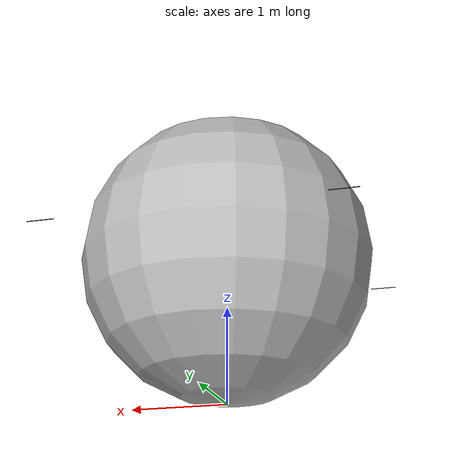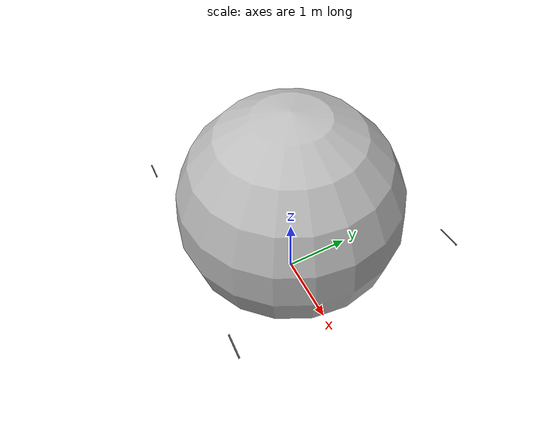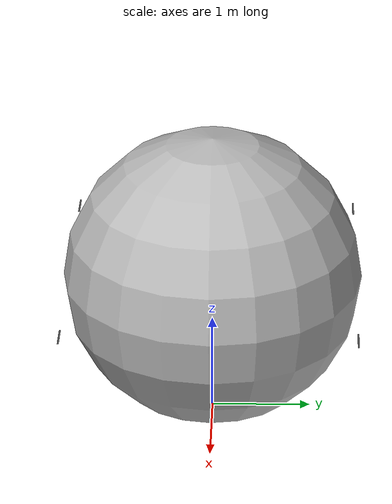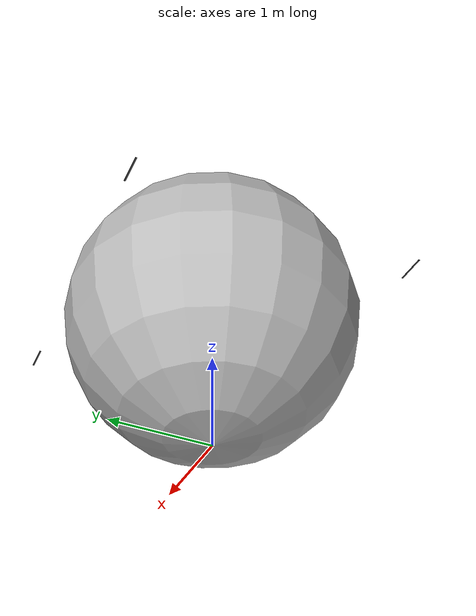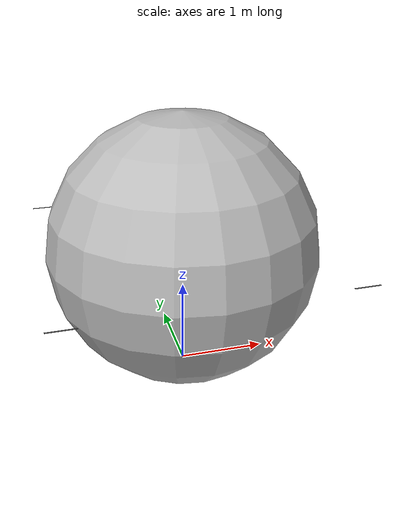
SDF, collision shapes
<?xml version="1.0" encoding="UTF-8"?>
<sdf version='1.9'>
  <model name='hb_2'>
    <pose>0 0 1.5 0 0 0</pose>
    <self_collide>false</self_collide>
    <static>false</static>
    <link name="base_link">
      <inertial>
        <mass>2.0</mass>
        <inertia>
          <ixx>0.02166666666666667</ixx>
          <ixy>0</ixy>
          <ixz>0</ixz>
          <iyy>0.02166666666666667</iyy>
          <iyz>0</iyz>
          <izz>0.04000000000000001</izz>
        </inertia>
      </inertial>
      <gravity>true</gravity>
      <velocity_decay/>
      <visual name="base_link_visual">
        <pose>0 0 0 0 0 0</pose>
        <geometry>
          <mesh>
            <scale>1 1 1</scale>
            <uri>model://hb_2/meshes/body.dae</uri>
          </mesh>
        </geometry>
      </visual>
      <visual name="motor_arm_0">
        <pose> 1.061 1.061 0 0 0 0.785</pose>
        <geometry>
          <mesh>
            <scale>1 1 1</scale>
            <uri>model://hb_2/meshes/motor_arm.dae</uri>
          </mesh>
        </geometry>
      </visual>
      <visual name="motor_arm_1">
        <pose> -1.061 1.061 0 0 0 2.356</pose>
        <geometry>
          <mesh>
            <scale>1 1 1</scale>
            <uri>model://hb_2/meshes/motor_arm.dae</uri>
          </mesh>
        </geometry>
      </visual>
      <visual name="motor_arm_2">
        <pose> 1.061 -1.061 0 0 0 -0.785</pose>
        <geometry>
          <mesh>
            <scale>1 1 1</scale>
            <uri>model://hb_2/meshes/motor_arm.dae</uri>
          </mesh>
        </geometry>
      </visual>
      <visual name="motor_arm_3">
        <pose> -1.061 -1.061 0 0 0 -2.356</pose>
        <geometry>
          <mesh>
            <scale>1 1 1</scale>
            <uri>model://hb_2/meshes/motor_arm.dae</uri>
          </mesh>
        </geometry>
      </visual>
      <visual name="5010_motor_base_0">
        <pose>1.439 1.439 .020 0 0 -.45</pose>
        <geometry>
          <mesh>
            <scale>1 1 1</scale>
            <uri>model://hb_2/meshes/5010Base.dae</uri>
          </mesh>
        </geometry>
      </visual>
      <visual name="5010_motor_base_1">
        <pose>-1.439 1.439 .020 0 0 -.45</pose>
        <geometry>
          <mesh>
            <scale>1 1 1</scale>
            <uri>model://hb_2/meshes/5010Base.dae</uri>
          </mesh>
        </geometry>
      </visual>
      <visual name="5010_motor_base_2">
        <pose>1.439 -1.439 .020 0 0 -.45</pose>
        <geometry>
          <mesh>
            <scale>1 1 1</scale>
            <uri>model://hb_2/meshes/5010Base.dae</uri>
          </mesh>
        </geometry>
      </visual>
      <visual name="5010_motor_base_3">
        <pose>-1.439 -1.439 .020 0 0 -.45</pose>
        <geometry>
          <mesh>
            <scale>1 1 1</scale>
            <uri>model://hb_2/meshes/5010Base.dae</uri>
          </mesh>
        </geometry>
      </visual>
      <collision name="base_link_collision_0">
        <pose>0 0 .007 0 0 0</pose>
        <geometry>
          <box>
            <size>0.35355339059327373 0.35355339059327373 0.05</size>
          </box>
        </geometry>
        <surface>
          <contact>
            <ode>
              <min_depth>0.001</min_depth>
              <max_vel>0</max_vel>
            </ode>
          </contact>
          <friction>
            <ode/>
          </friction>
        </surface>
      </collision>
      <collision name="base_link_collision_1">
        <pose>0 0 0 0 0 0</pose>
        <geometry>
          <sphere>
            <radius>1.5</radius>
          </sphere>
        </geometry>
        <surface>
          <contact>
            <ode>
              <min_depth>0.001</min_depth>
              <max_vel>0</max_vel>
            </ode>
          </contact>
          <friction>
            <ode/>
          </friction>
        </surface>
      </collision>
      <sensor name="air_pressure_sensor" type="air_pressure">
        <always_on>1</always_on>
        <update_rate>50</update_rate>
        <air_pressure>
          <!-- Noise modeled after BMP390 -->
          <pressure>
            <noise type="gaussian">
              <mean>0</mean>
              <stddev>3</stddev>
            </noise>
          </pressure>
        </air_pressure>
      </sensor>
      <sensor name="magnetometer_sensor" type="magnetometer">
        <always_on>1</always_on>
        <update_rate>100</update_rate>
        <magnetometer>
          <!-- TODO: update to fix units and coordinate system when we move past Harmonic -->
          <!-- See https://github.com/gazebosim/gz-sim/pull/2460 -->
          <!-- 3mgauss RMS: NOTE: noise is in tesla but sensor reports data in gauss -->
          <!-- Noise modeled after IIS2MDC -->
          <x>
            <noise type="gaussian">
              <stddev>0.0001</stddev>
            </noise>
          </x>
          <y>
            <noise type="gaussian">
              <stddev>0.0001</stddev>
            </noise>
          </y>
          <z>
            <noise type="gaussian">
              <stddev>0.0001</stddev>
            </noise>
          </z>
        </magnetometer>
      </sensor>
      <sensor name="imu_sensor" type="imu">
        <always_on>1</always_on>
        <update_rate>250</update_rate>
        <imu>
          <angular_velocity>
            <!-- Noise modeled after IIM42653 -->
            <!-- 0.05 deg/s converted to rad/s -->
            <x>
              <noise type="gaussian">
                <mean>0.0</mean>
                <stddev>0.0008726646</stddev>
              </noise>
            </x>
            <y>
              <noise type="gaussian">
                <mean>0.0</mean>
                <stddev>0.0008726646</stddev>
              </noise>
            </y>
            <z>
              <noise type="gaussian">
                <mean>0.0</mean>
                <stddev>0.0008726646</stddev>
              </noise>
            </z>
          </angular_velocity>
          <linear_acceleration>
            <!-- Noise modeled after IIM42653 -->
            <!-- X & Y axis: 0.65 mg-rms converted to m/ss -->
            <x>
              <noise type="gaussian">
                <mean>0.0</mean>
                <stddev>0.00637</stddev>
              </noise>
            </x>
            <y>
              <noise type="gaussian">
                <mean>0.0</mean>
                <stddev>0.00637</stddev>
              </noise>
            </y>
            <!-- Z axis: 0.70 mg-rms converted to m/ss-->
            <z>
              <noise type="gaussian">
                <mean>0.0</mean>
                <stddev>0.00686</stddev>
              </noise>
            </z>
          </linear_acceleration>
        </imu>
      </sensor>
      <sensor name="navsat_sensor" type="navsat">
        <always_on>1</always_on>
        <update_rate>30</update_rate>
      </sensor>
    </link>
    <link name="rotor_0">
      <gravity>true</gravity>
      <self_collide>false</self_collide>
      <velocity_decay/>
      <pose>1.439 -1.439 0.048 0 0 0</pose>
      <inertial>
        <mass>0.016076923076923075</mass>
        <inertia>
          <ixx>3.8464910483993325e-07</ixx>
          <iyy>2.6115851691700804e-05</iyy>
          <izz>2.649858234714004e-05</izz>
        </inertia>
      </inertial>
      <visual name="rotor_0_visual">
        <pose>-0.022 -0.14638461538461536 -0.016 0 0 0</pose>
        <geometry>
          <mesh>
            <scale>1 1 1</scale>
            <uri>model://hb_2/meshes/1345_prop_ccw.stl</uri>
          </mesh>
        </geometry>
        <material>
          <script>
            <name>Gazebo/DarkGrey</name>
            <uri>file://media/materials/scripts/gazebo.material</uri>
          </script>
        </material>
      </visual>
      <visual name="rotor_0_visual_motor_bell">
        <pose>0 0 -.032 0 0 0</pose>
        <geometry>
          <mesh>
            <scale>1 1 1</scale>
            <uri>model://hb_2/meshes/5010Bell.dae</uri>
          </mesh>
        </geometry>
      </visual>
      <collision name="rotor_0_collision">
        <pose>0 0 0 0 0 0 </pose>
        <geometry>
          <box>
            <size>0.2792307692307692 0.016923076923076923 0.0008461538461538462</size>
          </box>
        </geometry>
        <surface>
          <contact>
            <ode>
              <min_depth>0.001</min_depth>
              <max_vel>0</max_vel>
            </ode>
          </contact>
          <friction>
            <ode/>
          </friction>
        </surface>
      </collision>
    </link>
    <joint name="rotor_0_joint" type="revolute">
      <parent>base_link</parent>
      <child>rotor_0</child>
      <axis>
        <xyz>0 0 1</xyz>
        <limit>
          <lower>-1e+16</lower>
          <upper>1e+16</upper>
        </limit>
        <dynamics>
          <spring_reference>0</spring_reference>
          <spring_stiffness>0</spring_stiffness>
        </dynamics>
      </axis>
    </joint>
    <link name="rotor_1">
      <gravity>true</gravity>
      <self_collide>false</self_collide>
      <velocity_decay/>
      <pose>-1.439 1.439 0.048 0 0 0</pose>
      <inertial>
        <mass>0.016076923076923075</mass>
        <inertia>
          <ixx>3.8464910483993325e-07</ixx>
          <iyy>2.6115851691700804e-05</iyy>
          <izz>2.649858234714004e-05</izz>
        </inertia>
      </inertial>
      <visual name="rotor_1_visual">
        <pose>-0.022 -0.14638461538461536 -0.016 0 0 0</pose>
        <geometry>
          <mesh>
            <scale>1 1 1</scale>
            <uri>model://hb_2/meshes/1345_prop_ccw.stl</uri>
          </mesh>
        </geometry>
        <material>
          <script>
            <name>Gazebo/DarkGrey</name>
            <uri>file://media/materials/scripts/gazebo.material</uri>
          </script>
        </material>
      </visual>
      <visual name="rotor_1_visual_motor_top">
        <pose>0 0 -.032 0 0 0</pose>
        <geometry>
          <mesh>
            <scale>1 1 1</scale>
            <uri>model://hb_2/meshes/5010Bell.dae</uri>
          </mesh>
        </geometry>
      </visual>
      <collision name="rotor_1_collision">
        <pose>0 0 0 0 0 0 </pose>
        <geometry>
          <box>
            <size>0.2792307692307692 0.016923076923076923 0.0008461538461538462</size>
          </box>
        </geometry>
        <surface>
          <contact>
            <ode>
              <min_depth>0.001</min_depth>
              <max_vel>0</max_vel>
            </ode>
          </contact>
          <friction>
            <ode/>
          </friction>
        </surface>
      </collision>
    </link>
    <joint name="rotor_1_joint" type="revolute">
      <parent>base_link</parent>
      <child>rotor_1</child>
      <axis>
        <xyz>0 0 1</xyz>
        <limit>
          <lower>-1e+16</lower>
          <upper>1e+16</upper>
        </limit>
        <dynamics>
          <spring_reference>0</spring_reference>
          <spring_stiffness>0</spring_stiffness>
        </dynamics>
      </axis>
    </joint>
    <link name="rotor_2">
      <gravity>true</gravity>
      <self_collide>false</self_collide>
      <velocity_decay/>
      <pose>1.439 1.439 0.048 0 0 0</pose>
      <inertial>
        <mass>0.016076923076923075</mass>
        <inertia>
          <ixx>3.8464910483993325e-07</ixx>
          <iyy>2.6115851691700804e-05</iyy>
          <izz>2.649858234714004e-05</izz>
        </inertia>
      </inertial>
      <visual name="rotor_2_visual">
        <pose>-0.022 -0.14638461538461536 -0.016 0 0 0</pose>
        <geometry>
          <mesh>
            <scale>1 1 1</scale>
            <uri>model://hb_2/meshes/1345_prop_cw.stl</uri>
          </mesh>
        </geometry>
        <material>
          <script>
            <name>Gazebo/DarkGrey</name>
            <uri>file://media/materials/scripts/gazebo.material</uri>
          </script>
        </material>
      </visual>
      <visual name="rotor_2_visual_motor_top">
        <pose>0 0 -.032 0 0 0</pose>
        <geometry>
          <mesh>
            <scale>1 1 1</scale>
            <uri>model://hb_2/meshes/5010Bell.dae</uri>
          </mesh>
        </geometry>
      </visual>
      <collision name="rotor_2_collision">
        <pose>0 0 0 0 0 0 </pose>
        <geometry>
          <box>
            <size>0.2792307692307692 0.016923076923076923 0.0008461538461538462</size>
          </box>
        </geometry>
        <surface>
          <contact>
            <ode>
              <min_depth>0.001</min_depth>
              <max_vel>0</max_vel>
            </ode>
          </contact>
          <friction>
            <ode/>
          </friction>
        </surface>
      </collision>
    </link>
    <joint name="rotor_2_joint" type="revolute">
      <parent>base_link</parent>
      <child>rotor_2</child>
      <axis>
        <xyz>0 0 1</xyz>
        <limit>
          <lower>-1e+16</lower>
          <upper>1e+16</upper>
        </limit>
        <dynamics>
          <spring_reference>0</spring_reference>
          <spring_stiffness>0</spring_stiffness>
        </dynamics>
      </axis>
    </joint>
    <link name="rotor_3">
      <gravity>true</gravity>
      <self_collide>false</self_collide>
      <velocity_decay/>
      <pose>-1.439 -1.439 0.048 0 0 0</pose>
      <inertial>
        <mass>0.016076923076923075</mass>
        <inertia>
          <ixx>3.8464910483993325e-07</ixx>
          <iyy>2.6115851691700804e-05</iyy>
          <izz>2.649858234714004e-05</izz>
        </inertia>
      </inertial>
      <visual name="rotor_3_visual">
        <pose>-0.022 -0.14638461538461536 -0.016 0 0 0</pose>
        <geometry>
          <mesh>
            <scale>1 1 1</scale>
            <uri>model://hb_2/meshes/1345_prop_cw.stl</uri>
          </mesh>
        </geometry>
        <material>
          <script>
            <name>Gazebo/DarkGrey</name>
            <uri>file://media/materials/scripts/gazebo.material</uri>
          </script>
        </material>
      </visual>
      <visual name="rotor_3_visual_motor_top">
        <pose>0 0 -.032 0 0 0</pose>
        <geometry>
          <mesh>
            <scale>1 1 1</scale>
            <uri>model://hb_2/meshes/5010Bell.dae</uri>
          </mesh>
        </geometry>
      </visual>
      <collision name="rotor_3_collision">
        <pose>0 0 0 0 0 0 </pose>
        <geometry>
          <box>
            <size>0.2792307692307692 0.016923076923076923 0.0008461538461538462</size>
          </box>
        </geometry>
        <surface>
          <contact>
            <ode>
              <min_depth>0.001</min_depth>
              <max_vel>0</max_vel>
            </ode>
          </contact>
          <friction>
            <ode/>
          </friction>
        </surface>
      </collision>
    </link>
    <joint name="rotor_3_joint" type="revolute">
      <parent>base_link</parent>
      <child>rotor_3</child>
      <axis>
        <xyz>0 0 1</xyz>
        <limit>
          <lower>-1e+16</lower>
          <upper>1e+16</upper>
        </limit>
        <dynamics>
          <spring_reference>0</spring_reference>
          <spring_stiffness>0</spring_stiffness>
        </dynamics>
      </axis>
    </joint>

    <plugin filename="gz-sim-multicopter-motor-model-system" name="gz::sim::systems::MulticopterMotorModel">
      <jointName>rotor_0_joint</jointName>
      <linkName>rotor_0</linkName>
      <turningDirection>ccw</turningDirection>
      <timeConstantUp>0.0125</timeConstantUp>
      <timeConstantDown>0.025</timeConstantDown>
      <maxRotVelocity>1000.0</maxRotVelocity>
      <motorConstant>8.54858e-06</motorConstant>
      <momentConstant>0.016</momentConstant>
      <commandSubTopic>command/motor_speed</commandSubTopic>
      <motorNumber>0</motorNumber>
      <rotorDragCoefficient>8.06428e-05</rotorDragCoefficient>
      <rollingMomentCoefficient>1e-06</rollingMomentCoefficient>
      <rotorVelocitySlowdownSim>10</rotorVelocitySlowdownSim>
      <motorType>velocity</motorType>
    </plugin>
    <plugin filename="gz-sim-multicopter-motor-model-system" name="gz::sim::systems::MulticopterMotorModel">
      <jointName>rotor_1_joint</jointName>
      <linkName>rotor_1</linkName>
      <turningDirection>ccw</turningDirection>
      <timeConstantUp>0.0125</timeConstantUp>
      <timeConstantDown>0.025</timeConstantDown>
      <maxRotVelocity>1000.0</maxRotVelocity>
      <motorConstant>8.54858e-06</motorConstant>
      <momentConstant>0.016</momentConstant>
      <commandSubTopic>command/motor_speed</commandSubTopic>
      <motorNumber>1</motorNumber>
      <rotorDragCoefficient>8.06428e-05</rotorDragCoefficient>
      <rollingMomentCoefficient>1e-06</rollingMomentCoefficient>
      <rotorVelocitySlowdownSim>10</rotorVelocitySlowdownSim>
      <motorType>velocity</motorType>
    </plugin>
    <plugin filename="gz-sim-multicopter-motor-model-system" name="gz::sim::systems::MulticopterMotorModel">
      <jointName>rotor_2_joint</jointName>
      <linkName>rotor_2</linkName>
      <turningDirection>cw</turningDirection>
      <timeConstantUp>0.0125</timeConstantUp>
      <timeConstantDown>0.025</timeConstantDown>
      <maxRotVelocity>1000.0</maxRotVelocity>
      <motorConstant>8.54858e-06</motorConstant>
      <momentConstant>0.016</momentConstant>
      <commandSubTopic>command/motor_speed</commandSubTopic>
      <motorNumber>2</motorNumber>
      <rotorDragCoefficient>8.06428e-05</rotorDragCoefficient>
      <rollingMomentCoefficient>1e-06</rollingMomentCoefficient>
      <rotorVelocitySlowdownSim>10</rotorVelocitySlowdownSim>
      <motorType>velocity</motorType>
    </plugin>
    <plugin filename="gz-sim-multicopter-motor-model-system" name="gz::sim::systems::MulticopterMotorModel">
      <jointName>rotor_3_joint</jointName>
      <linkName>rotor_3</linkName>
      <turningDirection>cw</turningDirection>
      <timeConstantUp>0.0125</timeConstantUp>
      <timeConstantDown>0.025</timeConstantDown>
      <maxRotVelocity>1000.0</maxRotVelocity>
      <motorConstant>8.54858e-06</motorConstant>
      <momentConstant>0.016</momentConstant>
      <commandSubTopic>command/motor_speed</commandSubTopic>
      <motorNumber>3</motorNumber>
      <rotorDragCoefficient>8.06428e-05</rotorDragCoefficient>
      <rollingMomentCoefficient>1e-06</rollingMomentCoefficient>
      <rotorVelocitySlowdownSim>10</rotorVelocitySlowdownSim>
      <motorType>velocity</motorType>
    </plugin>
  </model>
</sdf>
